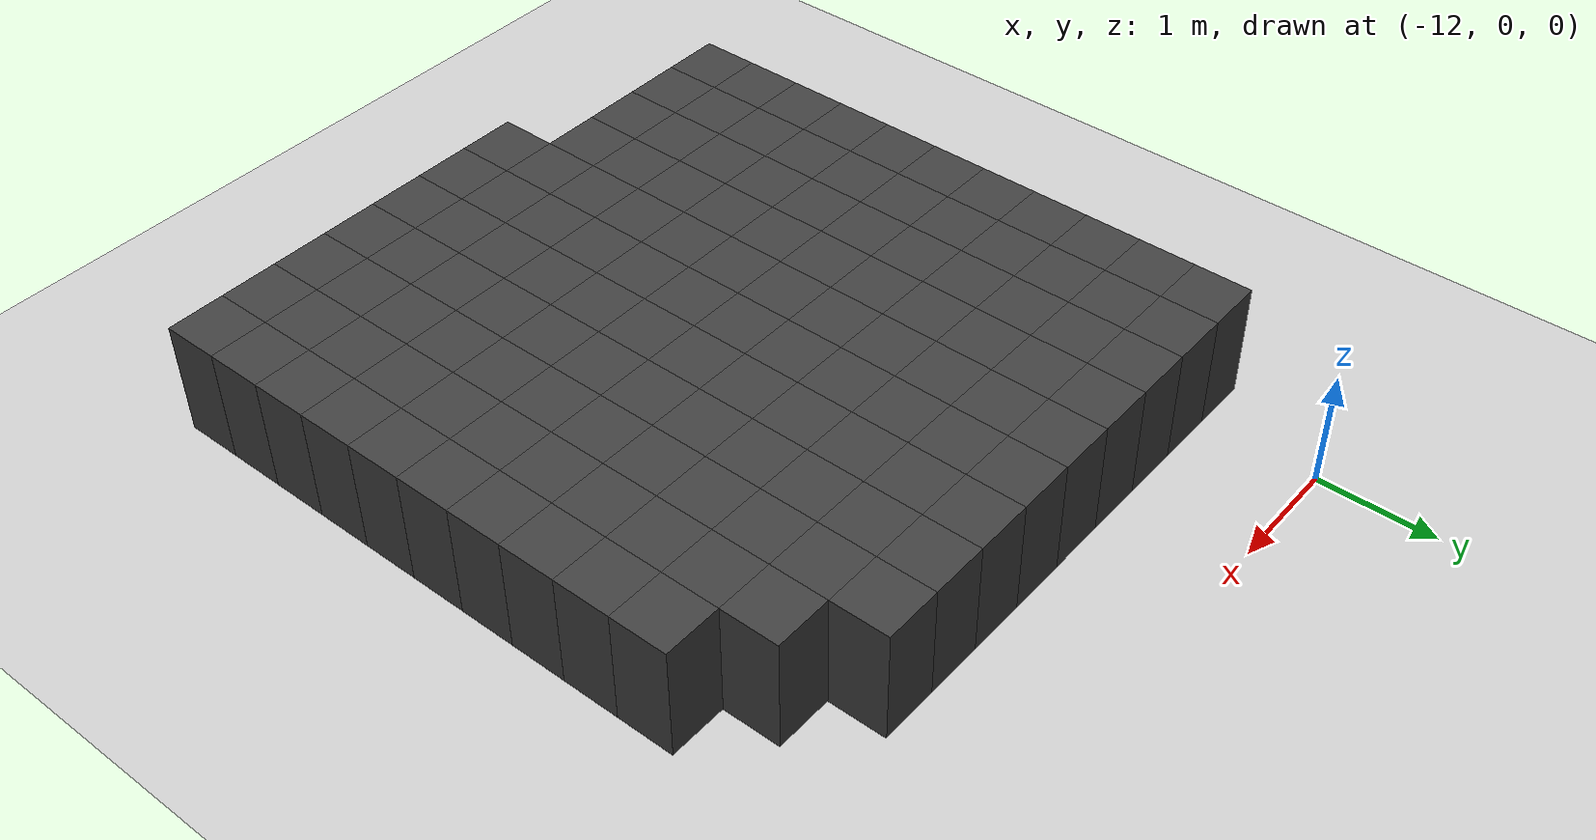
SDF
<sdf version="1.7">
 <world name="map_10764">
  <model name="ground_plane">
   <static>true</static>
   <link name="link">
    <collision name="collision">
     <geometry><plane><normal>0 0 1</normal><size>200 200</size></plane></geometry>
    </collision>
    <visual name="visual">
     <geometry><plane><normal>0 0 1</normal><size>200 200</size></plane></geometry>
     <material><ambient>0.8 0.8 0.8 1</ambient><diffuse>0.8 0.8 0.8 1</diffuse></material>
    </visual>
   </link>
  </model>
  <model name="maze_environment">
   <static>true</static>
   <link name="wall_1096">
    <pose>-12.250 -1.250 0.500 0 0 0</pose>
    <collision name="col"><geometry><box><size>0.5 0.5 1.0</size></box></geometry></collision>
    <visual name="vis">
     <geometry><box><size>0.5 0.5 1.0</size></box></geometry>
     <material><ambient>0.15 0.15 0.15 1</ambient><diffuse>0.25 0.25 0.25 1</diffuse></material>
    </visual>
   </link>
   <link name="wall_1097">
    <pose>-11.750 -1.250 0.500 0 0 0</pose>
    <collision name="col"><geometry><box><size>0.5 0.5 1.0</size></box></geometry></collision>
    <visual name="vis">
     <geometry><box><size>0.5 0.5 1.0</size></box></geometry>
     <material><ambient>0.15 0.15 0.15 1</ambient><diffuse>0.25 0.25 0.25 1</diffuse></material>
    </visual>
   </link>
   <link name="wall_1098">
    <pose>-11.250 -1.250 0.500 0 0 0</pose>
    <collision name="col"><geometry><box><size>0.5 0.5 1.0</size></box></geometry></collision>
    <visual name="vis">
     <geometry><box><size>0.5 0.5 1.0</size></box></geometry>
     <material><ambient>0.15 0.15 0.15 1</ambient><diffuse>0.25 0.25 0.25 1</diffuse></material>
    </visual>
   </link>
   <link name="wall_1099">
    <pose>-10.750 -1.250 0.500 0 0 0</pose>
    <collision name="col"><geometry><box><size>0.5 0.5 1.0</size></box></geometry></collision>
    <visual name="vis">
     <geometry><box><size>0.5 0.5 1.0</size></box></geometry>
     <material><ambient>0.15 0.15 0.15 1</ambient><diffuse>0.25 0.25 0.25 1</diffuse></material>
    </visual>
   </link>
   <link name="wall_1100">
    <pose>-10.250 -1.250 0.500 0 0 0</pose>
    <collision name="col"><geometry><box><size>0.5 0.5 1.0</size></box></geometry></collision>
    <visual name="vis">
     <geometry><box><size>0.5 0.5 1.0</size></box></geometry>
     <material><ambient>0.15 0.15 0.15 1</ambient><diffuse>0.25 0.25 0.25 1</diffuse></material>
    </visual>
   </link>
   <link name="wall_1101">
    <pose>-9.750 -1.250 0.500 0 0 0</pose>
    <collision name="col"><geometry><box><size>0.5 0.5 1.0</size></box></geometry></collision>
    <visual name="vis">
     <geometry><box><size>0.5 0.5 1.0</size></box></geometry>
     <material><ambient>0.15 0.15 0.15 1</ambient><diffuse>0.25 0.25 0.25 1</diffuse></material>
    </visual>
   </link>
   <link name="wall_1102">
    <pose>-9.250 -1.250 0.500 0 0 0</pose>
    <collision name="col"><geometry><box><size>0.5 0.5 1.0</size></box></geometry></collision>
    <visual name="vis">
     <geometry><box><size>0.5 0.5 1.0</size></box></geometry>
     <material><ambient>0.15 0.15 0.15 1</ambient><diffuse>0.25 0.25 0.25 1</diffuse></material>
    </visual>
   </link>
   <link name="wall_1103">
    <pose>-8.750 -1.250 0.500 0 0 0</pose>
    <collision name="col"><geometry><box><size>0.5 0.5 1.0</size></box></geometry></collision>
    <visual name="vis">
     <geometry><box><size>0.5 0.5 1.0</size></box></geometry>
     <material><ambient>0.15 0.15 0.15 1</ambient><diffuse>0.25 0.25 0.25 1</diffuse></material>
    </visual>
   </link>
   <link name="wall_1104">
    <pose>-8.250 -1.250 0.500 0 0 0</pose>
    <collision name="col"><geometry><box><size>0.5 0.5 1.0</size></box></geometry></collision>
    <visual name="vis">
     <geometry><box><size>0.5 0.5 1.0</size></box></geometry>
     <material><ambient>0.15 0.15 0.15 1</ambient><diffuse>0.25 0.25 0.25 1</diffuse></material>
    </visual>
   </link>
   <link name="wall_1129">
    <pose>-12.250 -1.750 0.500 0 0 0</pose>
    <collision name="col"><geometry><box><size>0.5 0.5 1.0</size></box></geometry></collision>
    <visual name="vis">
     <geometry><box><size>0.5 0.5 1.0</size></box></geometry>
     <material><ambient>0.15 0.15 0.15 1</ambient><diffuse>0.25 0.25 0.25 1</diffuse></material>
    </visual>
   </link>
   <link name="wall_1130">
    <pose>-11.750 -1.750 0.500 0 0 0</pose>
    <collision name="col"><geometry><box><size>0.5 0.5 1.0</size></box></geometry></collision>
    <visual name="vis">
     <geometry><box><size>0.5 0.5 1.0</size></box></geometry>
     <material><ambient>0.15 0.15 0.15 1</ambient><diffuse>0.25 0.25 0.25 1</diffuse></material>
    </visual>
   </link>
   <link name="wall_1131">
    <pose>-11.250 -1.750 0.500 0 0 0</pose>
    <collision name="col"><geometry><box><size>0.5 0.5 1.0</size></box></geometry></collision>
    <visual name="vis">
     <geometry><box><size>0.5 0.5 1.0</size></box></geometry>
     <material><ambient>0.15 0.15 0.15 1</ambient><diffuse>0.25 0.25 0.25 1</diffuse></material>
    </visual>
   </link>
   <link name="wall_1132">
    <pose>-10.750 -1.750 0.500 0 0 0</pose>
    <collision name="col"><geometry><box><size>0.5 0.5 1.0</size></box></geometry></collision>
    <visual name="vis">
     <geometry><box><size>0.5 0.5 1.0</size></box></geometry>
     <material><ambient>0.15 0.15 0.15 1</ambient><diffuse>0.25 0.25 0.25 1</diffuse></material>
    </visual>
   </link>
   <link name="wall_1133">
    <pose>-10.250 -1.750 0.500 0 0 0</pose>
    <collision name="col"><geometry><box><size>0.5 0.5 1.0</size></box></geometry></collision>
    <visual name="vis">
     <geometry><box><size>0.5 0.5 1.0</size></box></geometry>
     <material><ambient>0.15 0.15 0.15 1</ambient><diffuse>0.25 0.25 0.25 1</diffuse></material>
    </visual>
   </link>
   <link name="wall_1134">
    <pose>-9.750 -1.750 0.500 0 0 0</pose>
    <collision name="col"><geometry><box><size>0.5 0.5 1.0</size></box></geometry></collision>
    <visual name="vis">
     <geometry><box><size>0.5 0.5 1.0</size></box></geometry>
     <material><ambient>0.15 0.15 0.15 1</ambient><diffuse>0.25 0.25 0.25 1</diffuse></material>
    </visual>
   </link>
   <link name="wall_1135">
    <pose>-9.250 -1.750 0.500 0 0 0</pose>
    <collision name="col"><geometry><box><size>0.5 0.5 1.0</size></box></geometry></collision>
    <visual name="vis">
     <geometry><box><size>0.5 0.5 1.0</size></box></geometry>
     <material><ambient>0.15 0.15 0.15 1</ambient><diffuse>0.25 0.25 0.25 1</diffuse></material>
    </visual>
   </link>
   <link name="wall_1136">
    <pose>-8.750 -1.750 0.500 0 0 0</pose>
    <collision name="col"><geometry><box><size>0.5 0.5 1.0</size></box></geometry></collision>
    <visual name="vis">
     <geometry><box><size>0.5 0.5 1.0</size></box></geometry>
     <material><ambient>0.15 0.15 0.15 1</ambient><diffuse>0.25 0.25 0.25 1</diffuse></material>
    </visual>
   </link>
   <link name="wall_1137">
    <pose>-8.250 -1.750 0.500 0 0 0</pose>
    <collision name="col"><geometry><box><size>0.5 0.5 1.0</size></box></geometry></collision>
    <visual name="vis">
     <geometry><box><size>0.5 0.5 1.0</size></box></geometry>
     <material><ambient>0.15 0.15 0.15 1</ambient><diffuse>0.25 0.25 0.25 1</diffuse></material>
    </visual>
   </link>
   <link name="wall_1138">
    <pose>-7.750 -1.750 0.500 0 0 0</pose>
    <collision name="col"><geometry><box><size>0.5 0.5 1.0</size></box></geometry></collision>
    <visual name="vis">
     <geometry><box><size>0.5 0.5 1.0</size></box></geometry>
     <material><ambient>0.15 0.15 0.15 1</ambient><diffuse>0.25 0.25 0.25 1</diffuse></material>
    </visual>
   </link>
   <link name="wall_1162">
    <pose>-12.250 -2.250 0.500 0 0 0</pose>
    <collision name="col"><geometry><box><size>0.5 0.5 1.0</size></box></geometry></collision>
    <visual name="vis">
     <geometry><box><size>0.5 0.5 1.0</size></box></geometry>
     <material><ambient>0.15 0.15 0.15 1</ambient><diffuse>0.25 0.25 0.25 1</diffuse></material>
    </visual>
   </link>
   <link name="wall_1163">
    <pose>-11.750 -2.250 0.500 0 0 0</pose>
    <collision name="col"><geometry><box><size>0.5 0.5 1.0</size></box></geometry></collision>
    <visual name="vis">
     <geometry><box><size>0.5 0.5 1.0</size></box></geometry>
     <material><ambient>0.15 0.15 0.15 1</ambient><diffuse>0.25 0.25 0.25 1</diffuse></material>
    </visual>
   </link>
   <link name="wall_1164">
    <pose>-11.250 -2.250 0.500 0 0 0</pose>
    <collision name="col"><geometry><box><size>0.5 0.5 1.0</size></box></geometry></collision>
    <visual name="vis">
     <geometry><box><size>0.5 0.5 1.0</size></box></geometry>
     <material><ambient>0.15 0.15 0.15 1</ambient><diffuse>0.25 0.25 0.25 1</diffuse></material>
    </visual>
   </link>
   <link name="wall_1165">
    <pose>-10.750 -2.250 0.500 0 0 0</pose>
    <collision name="col"><geometry><box><size>0.5 0.5 1.0</size></box></geometry></collision>
    <visual name="vis">
     <geometry><box><size>0.5 0.5 1.0</size></box></geometry>
     <material><ambient>0.15 0.15 0.15 1</ambient><diffuse>0.25 0.25 0.25 1</diffuse></material>
    </visual>
   </link>
   <link name="wall_1166">
    <pose>-10.250 -2.250 0.500 0 0 0</pose>
    <collision name="col"><geometry><box><size>0.5 0.5 1.0</size></box></geometry></collision>
    <visual name="vis">
     <geometry><box><size>0.5 0.5 1.0</size></box></geometry>
     <material><ambient>0.15 0.15 0.15 1</ambient><diffuse>0.25 0.25 0.25 1</diffuse></material>
    </visual>
   </link>
   <link name="wall_1167">
    <pose>-9.750 -2.250 0.500 0 0 0</pose>
    <collision name="col"><geometry><box><size>0.5 0.5 1.0</size></box></geometry></collision>
    <visual name="vis">
     <geometry><box><size>0.5 0.5 1.0</size></box></geometry>
     <material><ambient>0.15 0.15 0.15 1</ambient><diffuse>0.25 0.25 0.25 1</diffuse></material>
    </visual>
   </link>
   <link name="wall_1168">
    <pose>-9.250 -2.250 0.500 0 0 0</pose>
    <collision name="col"><geometry><box><size>0.5 0.5 1.0</size></box></geometry></collision>
    <visual name="vis">
     <geometry><box><size>0.5 0.5 1.0</size></box></geometry>
     <material><ambient>0.15 0.15 0.15 1</ambient><diffuse>0.25 0.25 0.25 1</diffuse></material>
    </visual>
   </link>
   <link name="wall_1169">
    <pose>-8.750 -2.250 0.500 0 0 0</pose>
    <collision name="col"><geometry><box><size>0.5 0.5 1.0</size></box></geometry></collision>
    <visual name="vis">
     <geometry><box><size>0.5 0.5 1.0</size></box></geometry>
     <material><ambient>0.15 0.15 0.15 1</ambient><diffuse>0.25 0.25 0.25 1</diffuse></material>
    </visual>
   </link>
   <link name="wall_1170">
    <pose>-8.250 -2.250 0.500 0 0 0</pose>
    <collision name="col"><geometry><box><size>0.5 0.5 1.0</size></box></geometry></collision>
    <visual name="vis">
     <geometry><box><size>0.5 0.5 1.0</size></box></geometry>
     <material><ambient>0.15 0.15 0.15 1</ambient><diffuse>0.25 0.25 0.25 1</diffuse></material>
    </visual>
   </link>
   <link name="wall_1171">
    <pose>-7.750 -2.250 0.500 0 0 0</pose>
    <collision name="col"><geometry><box><size>0.5 0.5 1.0</size></box></geometry></collision>
    <visual name="vis">
     <geometry><box><size>0.5 0.5 1.0</size></box></geometry>
     <material><ambient>0.15 0.15 0.15 1</ambient><diffuse>0.25 0.25 0.25 1</diffuse></material>
    </visual>
   </link>
   <link name="wall_1172">
    <pose>-7.250 -2.250 0.500 0 0 0</pose>
    <collision name="col"><geometry><box><size>0.5 0.5 1.0</size></box></geometry></collision>
    <visual name="vis">
     <geometry><box><size>0.5 0.5 1.0</size></box></geometry>
     <material><ambient>0.15 0.15 0.15 1</ambient><diffuse>0.25 0.25 0.25 1</diffuse></material>
    </visual>
   </link>
   <link name="wall_1203">
    <pose>-12.250 -2.750 0.500 0 0 0</pose>
    <collision name="col"><geometry><box><size>0.5 0.5 1.0</size></box></geometry></collision>
    <visual name="vis">
     <geometry><box><size>0.5 0.5 1.0</size></box></geometry>
     <material><ambient>0.15 0.15 0.15 1</ambient><diffuse>0.25 0.25 0.25 1</diffuse></material>
    </visual>
   </link>
   <link name="wall_1204">
    <pose>-11.750 -2.750 0.500 0 0 0</pose>
    <collision name="col"><geometry><box><size>0.5 0.5 1.0</size></box></geometry></collision>
    <visual name="vis">
     <geometry><box><size>0.5 0.5 1.0</size></box></geometry>
     <material><ambient>0.15 0.15 0.15 1</ambient><diffuse>0.25 0.25 0.25 1</diffuse></material>
    </visual>
   </link>
   <link name="wall_1205">
    <pose>-11.250 -2.750 0.500 0 0 0</pose>
    <collision name="col"><geometry><box><size>0.5 0.5 1.0</size></box></geometry></collision>
    <visual name="vis">
     <geometry><box><size>0.5 0.5 1.0</size></box></geometry>
     <material><ambient>0.15 0.15 0.15 1</ambient><diffuse>0.25 0.25 0.25 1</diffuse></material>
    </visual>
   </link>
   <link name="wall_1206">
    <pose>-10.750 -2.750 0.500 0 0 0</pose>
    <collision name="col"><geometry><box><size>0.5 0.5 1.0</size></box></geometry></collision>
    <visual name="vis">
     <geometry><box><size>0.5 0.5 1.0</size></box></geometry>
     <material><ambient>0.15 0.15 0.15 1</ambient><diffuse>0.25 0.25 0.25 1</diffuse></material>
    </visual>
   </link>
   <link name="wall_1207">
    <pose>-10.250 -2.750 0.500 0 0 0</pose>
    <collision name="col"><geometry><box><size>0.5 0.5 1.0</size></box></geometry></collision>
    <visual name="vis">
     <geometry><box><size>0.5 0.5 1.0</size></box></geometry>
     <material><ambient>0.15 0.15 0.15 1</ambient><diffuse>0.25 0.25 0.25 1</diffuse></material>
    </visual>
   </link>
   <link name="wall_1208">
    <pose>-9.750 -2.750 0.500 0 0 0</pose>
    <collision name="col"><geometry><box><size>0.5 0.5 1.0</size></box></geometry></collision>
    <visual name="vis">
     <geometry><box><size>0.5 0.5 1.0</size></box></geometry>
     <material><ambient>0.15 0.15 0.15 1</ambient><diffuse>0.25 0.25 0.25 1</diffuse></material>
    </visual>
   </link>
   <link name="wall_1209">
    <pose>-9.250 -2.750 0.500 0 0 0</pose>
    <collision name="col"><geometry><box><size>0.5 0.5 1.0</size></box></geometry></collision>
    <visual name="vis">
     <geometry><box><size>0.5 0.5 1.0</size></box></geometry>
     <material><ambient>0.15 0.15 0.15 1</ambient><diffuse>0.25 0.25 0.25 1</diffuse></material>
    </visual>
   </link>
   <link name="wall_1210">
    <pose>-8.750 -2.750 0.500 0 0 0</pose>
    <collision name="col"><geometry><box><size>0.5 0.5 1.0</size></box></geometry></collision>
    <visual name="vis">
     <geometry><box><size>0.5 0.5 1.0</size></box></geometry>
     <material><ambient>0.15 0.15 0.15 1</ambient><diffuse>0.25 0.25 0.25 1</diffuse></material>
    </visual>
   </link>
   <link name="wall_1211">
    <pose>-8.250 -2.750 0.500 0 0 0</pose>
    <collision name="col"><geometry><box><size>0.5 0.5 1.0</size></box></geometry></collision>
    <visual name="vis">
     <geometry><box><size>0.5 0.5 1.0</size></box></geometry>
     <material><ambient>0.15 0.15 0.15 1</ambient><diffuse>0.25 0.25 0.25 1</diffuse></material>
    </visual>
   </link>
   <link name="wall_1212">
    <pose>-7.750 -2.750 0.500 0 0 0</pose>
    <collision name="col"><geometry><box><size>0.5 0.5 1.0</size></box></geometry></collision>
    <visual name="vis">
     <geometry><box><size>0.5 0.5 1.0</size></box></geometry>
     <material><ambient>0.15 0.15 0.15 1</ambient><diffuse>0.25 0.25 0.25 1</diffuse></material>
    </visual>
   </link>
   <link name="wall_1213">
    <pose>-7.250 -2.750 0.500 0 0 0</pose>
    <collision name="col"><geometry><box><size>0.5 0.5 1.0</size></box></geometry></collision>
    <visual name="vis">
     <geometry><box><size>0.5 0.5 1.0</size></box></geometry>
     <material><ambient>0.15 0.15 0.15 1</ambient><diffuse>0.25 0.25 0.25 1</diffuse></material>
    </visual>
   </link>
   <link name="wall_1245">
    <pose>-12.250 -3.250 0.500 0 0 0</pose>
    <collision name="col"><geometry><box><size>0.5 0.5 1.0</size></box></geometry></collision>
    <visual name="vis">
     <geometry><box><size>0.5 0.5 1.0</size></box></geometry>
     <material><ambient>0.15 0.15 0.15 1</ambient><diffuse>0.25 0.25 0.25 1</diffuse></material>
    </visual>
   </link>
   <link name="wall_1246">
    <pose>-11.750 -3.250 0.500 0 0 0</pose>
    <collision name="col"><geometry><box><size>0.5 0.5 1.0</size></box></geometry></collision>
    <visual name="vis">
     <geometry><box><size>0.5 0.5 1.0</size></box></geometry>
     <material><ambient>0.15 0.15 0.15 1</ambient><diffuse>0.25 0.25 0.25 1</diffuse></material>
    </visual>
   </link>
   <link name="wall_1247">
    <pose>-11.250 -3.250 0.500 0 0 0</pose>
    <collision name="col"><geometry><box><size>0.5 0.5 1.0</size></box></geometry></collision>
    <visual name="vis">
     <geometry><box><size>0.5 0.5 1.0</size></box></geometry>
     <material><ambient>0.15 0.15 0.15 1</ambient><diffuse>0.25 0.25 0.25 1</diffuse></material>
    </visual>
   </link>
   <link name="wall_1248">
    <pose>-10.750 -3.250 0.500 0 0 0</pose>
    <collision name="col"><geometry><box><size>0.5 0.5 1.0</size></box></geometry></collision>
    <visual name="vis">
     <geometry><box><size>0.5 0.5 1.0</size></box></geometry>
     <material><ambient>0.15 0.15 0.15 1</ambient><diffuse>0.25 0.25 0.25 1</diffuse></material>
    </visual>
   </link>
   <link name="wall_1249">
    <pose>-10.250 -3.250 0.500 0 0 0</pose>
    <collision name="col"><geometry><box><size>0.5 0.5 1.0</size></box></geometry></collision>
    <visual name="vis">
     <geometry><box><size>0.5 0.5 1.0</size></box></geometry>
     <material><ambient>0.15 0.15 0.15 1</ambient><diffuse>0.25 0.25 0.25 1</diffuse></material>
    </visual>
   </link>
   <link name="wall_1250">
    <pose>-9.750 -3.250 0.500 0 0 0</pose>
    <collision name="col"><geometry><box><size>0.5 0.5 1.0</size></box></geometry></collision>
    <visual name="vis">
     <geometry><box><size>0.5 0.5 1.0</size></box></geometry>
     <material><ambient>0.15 0.15 0.15 1</ambient><diffuse>0.25 0.25 0.25 1</diffuse></material>
    </visual>
   </link>
   <link name="wall_1251">
    <pose>-9.250 -3.250 0.500 0 0 0</pose>
    <collision name="col"><geometry><box><size>0.5 0.5 1.0</size></box></geometry></collision>
    <visual name="vis">
     <geometry><box><size>0.5 0.5 1.0</size></box></geometry>
     <material><ambient>0.15 0.15 0.15 1</ambient><diffuse>0.25 0.25 0.25 1</diffuse></material>
    </visual>
   </link>
   <link name="wall_1252">
    <pose>-8.750 -3.250 0.500 0 0 0</pose>
    <collision name="col"><geometry><box><size>0.5 0.5 1.0</size></box></geometry></collision>
    <visual name="vis">
     <geometry><box><size>0.5 0.5 1.0</size></box></geometry>
     <material><ambient>0.15 0.15 0.15 1</ambient><diffuse>0.25 0.25 0.25 1</diffuse></material>
    </visual>
   </link>
   <link name="wall_1253">
    <pose>-8.250 -3.250 0.500 0 0 0</pose>
    <collision name="col"><geometry><box><size>0.5 0.5 1.0</size></box></geometry></collision>
    <visual name="vis">
     <geometry><box><size>0.5 0.5 1.0</size></box></geometry>
     <material><ambient>0.15 0.15 0.15 1</ambient><diffuse>0.25 0.25 0.25 1</diffuse></material>
    </visual>
   </link>
   <link name="wall_1254">
    <pose>-7.750 -3.250 0.500 0 0 0</pose>
    <collision name="col"><geometry><box><size>0.5 0.5 1.0</size></box></geometry></collision>
    <visual name="vis">
     <geometry><box><size>0.5 0.5 1.0</size></box></geometry>
     <material><ambient>0.15 0.15 0.15 1</ambient><diffuse>0.25 0.25 0.25 1</diffuse></material>
    </visual>
   </link>
   <link name="wall_1255">
    <pose>-7.250 -3.250 0.500 0 0 0</pose>
    <collision name="col"><geometry><box><size>0.5 0.5 1.0</size></box></geometry></collision>
    <visual name="vis">
     <geometry><box><size>0.5 0.5 1.0</size></box></geometry>
     <material><ambient>0.15 0.15 0.15 1</ambient><diffuse>0.25 0.25 0.25 1</diffuse></material>
    </visual>
   </link>
   <link name="wall_1287">
    <pose>-12.250 -3.750 0.500 0 0 0</pose>
    <collision name="col"><geometry><box><size>0.5 0.5 1.0</size></box></geometry></collision>
    <visual name="vis">
     <geometry><box><size>0.5 0.5 1.0</size></box></geometry>
     <material><ambient>0.15 0.15 0.15 1</ambient><diffuse>0.25 0.25 0.25 1</diffuse></material>
    </visual>
   </link>
   <link name="wall_1288">
    <pose>-11.750 -3.750 0.500 0 0 0</pose>
    <collision name="col"><geometry><box><size>0.5 0.5 1.0</size></box></geometry></collision>
    <visual name="vis">
     <geometry><box><size>0.5 0.5 1.0</size></box></geometry>
     <material><ambient>0.15 0.15 0.15 1</ambient><diffuse>0.25 0.25 0.25 1</diffuse></material>
    </visual>
   </link>
   <link name="wall_1289">
    <pose>-11.250 -3.750 0.500 0 0 0</pose>
    <collision name="col"><geometry><box><size>0.5 0.5 1.0</size></box></geometry></collision>
    <visual name="vis">
     <geometry><box><size>0.5 0.5 1.0</size></box></geometry>
     <material><ambient>0.15 0.15 0.15 1</ambient><diffuse>0.25 0.25 0.25 1</diffuse></material>
    </visual>
   </link>
   <link name="wall_1290">
    <pose>-10.750 -3.750 0.500 0 0 0</pose>
    <collision name="col"><geometry><box><size>0.5 0.5 1.0</size></box></geometry></collision>
    <visual name="vis">
     <geometry><box><size>0.5 0.5 1.0</size></box></geometry>
     <material><ambient>0.15 0.15 0.15 1</ambient><diffuse>0.25 0.25 0.25 1</diffuse></material>
    </visual>
   </link>
   <link name="wall_1291">
    <pose>-10.250 -3.750 0.500 0 0 0</pose>
    <collision name="col"><geometry><box><size>0.5 0.5 1.0</size></box></geometry></collision>
    <visual name="vis">
     <geometry><box><size>0.5 0.5 1.0</size></box></geometry>
     <material><ambient>0.15 0.15 0.15 1</ambient><diffuse>0.25 0.25 0.25 1</diffuse></material>
    </visual>
   </link>
   <link name="wall_1292">
    <pose>-9.750 -3.750 0.500 0 0 0</pose>
    <collision name="col"><geometry><box><size>0.5 0.5 1.0</size></box></geometry></collision>
    <visual name="vis">
     <geometry><box><size>0.5 0.5 1.0</size></box></geometry>
     <material><ambient>0.15 0.15 0.15 1</ambient><diffuse>0.25 0.25 0.25 1</diffuse></material>
    </visual>
   </link>
   <link name="wall_1293">
    <pose>-9.250 -3.750 0.500 0 0 0</pose>
    <collision name="col"><geometry><box><size>0.5 0.5 1.0</size></box></geometry></collision>
    <visual name="vis">
     <geometry><box><size>0.5 0.5 1.0</size></box></geometry>
     <material><ambient>0.15 0.15 0.15 1</ambient><diffuse>0.25 0.25 0.25 1</diffuse></material>
    </visual>
   </link>
   <link name="wall_1294">
    <pose>-8.750 -3.750 0.500 0 0 0</pose>
    <collision name="col"><geometry><box><size>0.5 0.5 1.0</size></box></geometry></collision>
    <visual name="vis">
     <geometry><box><size>0.5 0.5 1.0</size></box></geometry>
     <material><ambient>0.15 0.15 0.15 1</ambient><diffuse>0.25 0.25 0.25 1</diffuse></material>
    </visual>
   </link>
   <link name="wall_1295">
    <pose>-8.250 -3.750 0.500 0 0 0</pose>
    <collision name="col"><geometry><box><size>0.5 0.5 1.0</size></box></geometry></collision>
    <visual name="vis">
     <geometry><box><size>0.5 0.5 1.0</size></box></geometry>
     <material><ambient>0.15 0.15 0.15 1</ambient><diffuse>0.25 0.25 0.25 1</diffuse></material>
    </visual>
   </link>
   <link name="wall_1296">
    <pose>-7.750 -3.750 0.500 0 0 0</pose>
    <collision name="col"><geometry><box><size>0.5 0.5 1.0</size></box></geometry></collision>
    <visual name="vis">
     <geometry><box><size>0.5 0.5 1.0</size></box></geometry>
     <material><ambient>0.15 0.15 0.15 1</ambient><diffuse>0.25 0.25 0.25 1</diffuse></material>
    </visual>
   </link>
   <link name="wall_1297">
    <pose>-7.250 -3.750 0.500 0 0 0</pose>
    <collision name="col"><geometry><box><size>0.5 0.5 1.0</size></box></geometry></collision>
    <visual name="vis">
     <geometry><box><size>0.5 0.5 1.0</size></box></geometry>
     <material><ambient>0.15 0.15 0.15 1</ambient><diffuse>0.25 0.25 0.25 1</diffuse></material>
    </visual>
   </link>
   <link name="wall_1335">
    <pose>-12.250 -4.250 0.500 0 0 0</pose>
    <collision name="col"><geometry><box><size>0.5 0.5 1.0</size></box></geometry></collision>
    <visual name="vis">
     <geometry><box><size>0.5 0.5 1.0</size></box></geometry>
     <material><ambient>0.15 0.15 0.15 1</ambient><diffuse>0.25 0.25 0.25 1</diffuse></material>
    </visual>
   </link>
   <link name="wall_1336">
    <pose>-11.750 -4.250 0.500 0 0 0</pose>
    <collision name="col"><geometry><box><size>0.5 0.5 1.0</size></box></geometry></collision>
    <visual name="vis">
     <geometry><box><size>0.5 0.5 1.0</size></box></geometry>
     <material><ambient>0.15 0.15 0.15 1</ambient><diffuse>0.25 0.25 0.25 1</diffuse></material>
    </visual>
   </link>
   <link name="wall_1337">
    <pose>-11.250 -4.250 0.500 0 0 0</pose>
    <collision name="col"><geometry><box><size>0.5 0.5 1.0</size></box></geometry></collision>
    <visual name="vis">
     <geometry><box><size>0.5 0.5 1.0</size></box></geometry>
     <material><ambient>0.15 0.15 0.15 1</ambient><diffuse>0.25 0.25 0.25 1</diffuse></material>
    </visual>
   </link>
   <link name="wall_1338">
    <pose>-10.750 -4.250 0.500 0 0 0</pose>
    <collision name="col"><geometry><box><size>0.5 0.5 1.0</size></box></geometry></collision>
    <visual name="vis">
     <geometry><box><size>0.5 0.5 1.0</size></box></geometry>
     <material><ambient>0.15 0.15 0.15 1</ambient><diffuse>0.25 0.25 0.25 1</diffuse></material>
    </visual>
   </link>
   <link name="wall_1339">
    <pose>-10.250 -4.250 0.500 0 0 0</pose>
    <collision name="col"><geometry><box><size>0.5 0.5 1.0</size></box></geometry></collision>
    <visual name="vis">
     <geometry><box><size>0.5 0.5 1.0</size></box></geometry>
     <material><ambient>0.15 0.15 0.15 1</ambient><diffuse>0.25 0.25 0.25 1</diffuse></material>
    </visual>
   </link>
   <link name="wall_1340">
    <pose>-9.750 -4.250 0.500 0 0 0</pose>
    <collision name="col"><geometry><box><size>0.5 0.5 1.0</size></box></geometry></collision>
    <visual name="vis">
     <geometry><box><size>0.5 0.5 1.0</size></box></geometry>
     <material><ambient>0.15 0.15 0.15 1</ambient><diffuse>0.25 0.25 0.25 1</diffuse></material>
    </visual>
   </link>
   <link name="wall_1341">
    <pose>-9.250 -4.250 0.500 0 0 0</pose>
    <collision name="col"><geometry><box><size>0.5 0.5 1.0</size></box></geometry></collision>
    <visual name="vis">
     <geometry><box><size>0.5 0.5 1.0</size></box></geometry>
     <material><ambient>0.15 0.15 0.15 1</ambient><diffuse>0.25 0.25 0.25 1</diffuse></material>
    </visual>
   </link>
   <link name="wall_1342">
    <pose>-8.750 -4.250 0.500 0 0 0</pose>
    <collision name="col"><geometry><box><size>0.5 0.5 1.0</size></box></geometry></collision>
    <visual name="vis">
     <geometry><box><size>0.5 0.5 1.0</size></box></geometry>
     <material><ambient>0.15 0.15 0.15 1</ambient><diffuse>0.25 0.25 0.25 1</diffuse></material>
    </visual>
   </link>
   <link name="wall_1343">
    <pose>-8.250 -4.250 0.500 0 0 0</pose>
    <collision name="col"><geometry><box><size>0.5 0.5 1.0</size></box></geometry></collision>
    <visual name="vis">
     <geometry><box><size>0.5 0.5 1.0</size></box></geometry>
     <material><ambient>0.15 0.15 0.15 1</ambient><diffuse>0.25 0.25 0.25 1</diffuse></material>
    </visual>
   </link>
   <link name="wall_1344">
    <pose>-7.750 -4.250 0.500 0 0 0</pose>
    <collision name="col"><geometry><box><size>0.5 0.5 1.0</size></box></geometry></collision>
    <visual name="vis">
     <geometry><box><size>0.5 0.5 1.0</size></box></geometry>
     <material><ambient>0.15 0.15 0.15 1</ambient><diffuse>0.25 0.25 0.25 1</diffuse></material>
    </visual>
   </link>
   <link name="wall_1345">
    <pose>-7.250 -4.250 0.500 0 0 0</pose>
    <collision name="col"><geometry><box><size>0.5 0.5 1.0</size></box></geometry></collision>
    <visual name="vis">
     <geometry><box><size>0.5 0.5 1.0</size></box></geometry>
     <material><ambient>0.15 0.15 0.15 1</ambient><diffuse>0.25 0.25 0.25 1</diffuse></material>
    </visual>
   </link>
   <link name="wall_1379">
    <pose>-12.250 -4.750 0.500 0 0 0</pose>
    <collision name="col"><geometry><box><size>0.5 0.5 1.0</size></box></geometry></collision>
    <visual name="vis">
     <geometry><box><size>0.5 0.5 1.0</size></box></geometry>
     <material><ambient>0.15 0.15 0.15 1</ambient><diffuse>0.25 0.25 0.25 1</diffuse></material>
    </visual>
   </link>
   <link name="wall_1380">
    <pose>-11.750 -4.750 0.500 0 0 0</pose>
    <collision name="col"><geometry><box><size>0.5 0.5 1.0</size></box></geometry></collision>
    <visual name="vis">
     <geometry><box><size>0.5 0.5 1.0</size></box></geometry>
     <material><ambient>0.15 0.15 0.15 1</ambient><diffuse>0.25 0.25 0.25 1</diffuse></material>
    </visual>
   </link>
   <link name="wall_1381">
    <pose>-11.250 -4.750 0.500 0 0 0</pose>
    <collision name="col"><geometry><box><size>0.5 0.5 1.0</size></box></geometry></collision>
    <visual name="vis">
     <geometry><box><size>0.5 0.5 1.0</size></box></geometry>
     <material><ambient>0.15 0.15 0.15 1</ambient><diffuse>0.25 0.25 0.25 1</diffuse></material>
    </visual>
   </link>
   <link name="wall_1382">
    <pose>-10.750 -4.750 0.500 0 0 0</pose>
    <collision name="col"><geometry><box><size>0.5 0.5 1.0</size></box></geometry></collision>
    <visual name="vis">
     <geometry><box><size>0.5 0.5 1.0</size></box></geometry>
     <material><ambient>0.15 0.15 0.15 1</ambient><diffuse>0.25 0.25 0.25 1</diffuse></material>
    </visual>
   </link>
   <link name="wall_1383">
    <pose>-10.250 -4.750 0.500 0 0 0</pose>
    <collision name="col"><geometry><box><size>0.5 0.5 1.0</size></box></geometry></collision>
    <visual name="vis">
     <geometry><box><size>0.5 0.5 1.0</size></box></geometry>
     <material><ambient>0.15 0.15 0.15 1</ambient><diffuse>0.25 0.25 0.25 1</diffuse></material>
    </visual>
   </link>
   <link name="wall_1384">
    <pose>-9.750 -4.750 0.500 0 0 0</pose>
    <collision name="col"><geometry><box><size>0.5 0.5 1.0</size></box></geometry></collision>
    <visual name="vis">
     <geometry><box><size>0.5 0.5 1.0</size></box></geometry>
     <material><ambient>0.15 0.15 0.15 1</ambient><diffuse>0.25 0.25 0.25 1</diffuse></material>
    </visual>
   </link>
   <link name="wall_1385">
    <pose>-9.250 -4.750 0.500 0 0 0</pose>
    <collision name="col"><geometry><box><size>0.5 0.5 1.0</size></box></geometry></collision>
    <visual name="vis">
     <geometry><box><size>0.5 0.5 1.0</size></box></geometry>
     <material><ambient>0.15 0.15 0.15 1</ambient><diffuse>0.25 0.25 0.25 1</diffuse></material>
    </visual>
   </link>
   <link name="wall_1386">
    <pose>-8.750 -4.750 0.500 0 0 0</pose>
    <collision name="col"><geometry><box><size>0.5 0.5 1.0</size></box></geometry></collision>
    <visual name="vis">
     <geometry><box><size>0.5 0.5 1.0</size></box></geometry>
     <material><ambient>0.15 0.15 0.15 1</ambient><diffuse>0.25 0.25 0.25 1</diffuse></material>
    </visual>
   </link>
   <link name="wall_1387">
    <pose>-8.250 -4.750 0.500 0 0 0</pose>
    <collision name="col"><geometry><box><size>0.5 0.5 1.0</size></box></geometry></collision>
    <visual name="vis">
     <geometry><box><size>0.5 0.5 1.0</size></box></geometry>
     <material><ambient>0.15 0.15 0.15 1</ambient><diffuse>0.25 0.25 0.25 1</diffuse></material>
    </visual>
   </link>
   <link name="wall_1388">
    <pose>-7.750 -4.750 0.500 0 0 0</pose>
    <collision name="col"><geometry><box><size>0.5 0.5 1.0</size></box></geometry></collision>
    <visual name="vis">
     <geometry><box><size>0.5 0.5 1.0</size></box></geometry>
     <material><ambient>0.15 0.15 0.15 1</ambient><diffuse>0.25 0.25 0.25 1</diffuse></material>
    </visual>
   </link>
   <link name="wall_1389">
    <pose>-7.250 -4.750 0.500 0 0 0</pose>
    <collision name="col"><geometry><box><size>0.5 0.5 1.0</size></box></geometry></collision>
    <visual name="vis">
     <geometry><box><size>0.5 0.5 1.0</size></box></geometry>
     <material><ambient>0.15 0.15 0.15 1</ambient><diffuse>0.25 0.25 0.25 1</diffuse></material>
    </visual>
   </link>
   <link name="wall_1423">
    <pose>-12.250 -5.250 0.500 0 0 0</pose>
    <collision name="col"><geometry><box><size>0.5 0.5 1.0</size></box></geometry></collision>
    <visual name="vis">
     <geometry><box><size>0.5 0.5 1.0</size></box></geometry>
     <material><ambient>0.15 0.15 0.15 1</ambient><diffuse>0.25 0.25 0.25 1</diffuse></material>
    </visual>
   </link>
   <link name="wall_1424">
    <pose>-11.750 -5.250 0.500 0 0 0</pose>
    <collision name="col"><geometry><box><size>0.5 0.5 1.0</size></box></geometry></collision>
    <visual name="vis">
     <geometry><box><size>0.5 0.5 1.0</size></box></geometry>
     <material><ambient>0.15 0.15 0.15 1</ambient><diffuse>0.25 0.25 0.25 1</diffuse></material>
    </visual>
   </link>
   <link name="wall_1425">
    <pose>-11.250 -5.250 0.500 0 0 0</pose>
    <collision name="col"><geometry><box><size>0.5 0.5 1.0</size></box></geometry></collision>
    <visual name="vis">
     <geometry><box><size>0.5 0.5 1.0</size></box></geometry>
     <material><ambient>0.15 0.15 0.15 1</ambient><diffuse>0.25 0.25 0.25 1</diffuse></material>
    </visual>
   </link>
   <link name="wall_1426">
    <pose>-10.750 -5.250 0.500 0 0 0</pose>
    <collision name="col"><geometry><box><size>0.5 0.5 1.0</size></box></geometry></collision>
    <visual name="vis">
     <geometry><box><size>0.5 0.5 1.0</size></box></geometry>
     <material><ambient>0.15 0.15 0.15 1</ambient><diffuse>0.25 0.25 0.25 1</diffuse></material>
    </visual>
   </link>
   <link name="wall_1427">
    <pose>-10.250 -5.250 0.500 0 0 0</pose>
    <collision name="col"><geometry><box><size>0.5 0.5 1.0</size></box></geometry></collision>
    <visual name="vis">
     <geometry><box><size>0.5 0.5 1.0</size></box></geometry>
     <material><ambient>0.15 0.15 0.15 1</ambient><diffuse>0.25 0.25 0.25 1</diffuse></material>
    </visual>
   </link>
   <link name="wall_1428">
    <pose>-9.750 -5.250 0.500 0 0 0</pose>
    <collision name="col"><geometry><box><size>0.5 0.5 1.0</size></box></geometry></collision>
    <visual name="vis">
     <geometry><box><size>0.5 0.5 1.0</size></box></geometry>
     <material><ambient>0.15 0.15 0.15 1</ambient><diffuse>0.25 0.25 0.25 1</diffuse></material>
    </visual>
   </link>
   <link name="wall_1429">
    <pose>-9.250 -5.250 0.500 0 0 0</pose>
    <collision name="col"><geometry><box><size>0.5 0.5 1.0</size></box></geometry></collision>
    <visual name="vis">
     <geometry><box><size>0.5 0.5 1.0</size></box></geometry>
     <material><ambient>0.15 0.15 0.15 1</ambient><diffuse>0.25 0.25 0.25 1</diffuse></material>
    </visual>
   </link>
   <link name="wall_1430">
    <pose>-8.750 -5.250 0.500 0 0 0</pose>
    <collision name="col"><geometry><box><size>0.5 0.5 1.0</size></box></geometry></collision>
    <visual name="vis">
     <geometry><box><size>0.5 0.5 1.0</size></box></geometry>
     <material><ambient>0.15 0.15 0.15 1</ambient><diffuse>0.25 0.25 0.25 1</diffuse></material>
    </visual>
   </link>
   <link name="wall_1431">
    <pose>-8.250 -5.250 0.500 0 0 0</pose>
    <collision name="col"><geometry><box><size>0.5 0.5 1.0</size></box></geometry></collision>
    <visual name="vis">
     <geometry><box><size>0.5 0.5 1.0</size></box></geometry>
     <material><ambient>0.15 0.15 0.15 1</ambient><diffuse>0.25 0.25 0.25 1</diffuse></material>
    </visual>
   </link>
   <link name="wall_1432">
    <pose>-7.750 -5.250 0.500 0 0 0</pose>
    <collision name="col"><geometry><box><size>0.5 0.5 1.0</size></box></geometry></collision>
    <visual name="vis">
     <geometry><box><size>0.5 0.5 1.0</size></box></geometry>
     <material><ambient>0.15 0.15 0.15 1</ambient><diffuse>0.25 0.25 0.25 1</diffuse></material>
    </visual>
   </link>
   <link name="wall_1433">
    <pose>-7.250 -5.250 0.500 0 0 0</pose>
    <collision name="col"><geometry><box><size>0.5 0.5 1.0</size></box></geometry></collision>
    <visual name="vis">
     <geometry><box><size>0.5 0.5 1.0</size></box></geometry>
     <material><ambient>0.15 0.15 0.15 1</ambient><diffuse>0.25 0.25 0.25 1</diffuse></material>
    </visual>
   </link>
   <link name="wall_1467">
    <pose>-12.250 -5.750 0.500 0 0 0</pose>
    <collision name="col"><geometry><box><size>0.5 0.5 1.0</size></box></geometry></collision>
    <visual name="vis">
     <geometry><box><size>0.5 0.5 1.0</size></box></geometry>
     <material><ambient>0.15 0.15 0.15 1</ambient><diffuse>0.25 0.25 0.25 1</diffuse></material>
    </visual>
   </link>
   <link name="wall_1468">
    <pose>-11.750 -5.750 0.500 0 0 0</pose>
    <collision name="col"><geometry><box><size>0.5 0.5 1.0</size></box></geometry></collision>
    <visual name="vis">
     <geometry><box><size>0.5 0.5 1.0</size></box></geometry>
     <material><ambient>0.15 0.15 0.15 1</ambient><diffuse>0.25 0.25 0.25 1</diffuse></material>
    </visual>
   </link>
   <link name="wall_1469">
    <pose>-11.250 -5.750 0.500 0 0 0</pose>
    <collision name="col"><geometry><box><size>0.5 0.5 1.0</size></box></geometry></collision>
    <visual name="vis">
     <geometry><box><size>0.5 0.5 1.0</size></box></geometry>
     <material><ambient>0.15 0.15 0.15 1</ambient><diffuse>0.25 0.25 0.25 1</diffuse></material>
    </visual>
   </link>
   <link name="wall_1470">
    <pose>-10.750 -5.750 0.500 0 0 0</pose>
    <collision name="col"><geometry><box><size>0.5 0.5 1.0</size></box></geometry></collision>
    <visual name="vis">
     <geometry><box><size>0.5 0.5 1.0</size></box></geometry>
     <material><ambient>0.15 0.15 0.15 1</ambient><diffuse>0.25 0.25 0.25 1</diffuse></material>
    </visual>
   </link>
   <link name="wall_1471">
    <pose>-10.250 -5.750 0.500 0 0 0</pose>
    <collision name="col"><geometry><box><size>0.5 0.5 1.0</size></box></geometry></collision>
    <visual name="vis">
     <geometry><box><size>0.5 0.5 1.0</size></box></geometry>
     <material><ambient>0.15 0.15 0.15 1</ambient><diffuse>0.25 0.25 0.25 1</diffuse></material>
    </visual>
   </link>
   <link name="wall_1472">
    <pose>-9.750 -5.750 0.500 0 0 0</pose>
    <collision name="col"><geometry><box><size>0.5 0.5 1.0</size></box></geometry></collision>
    <visual name="vis">
     <geometry><box><size>0.5 0.5 1.0</size></box></geometry>
     <material><ambient>0.15 0.15 0.15 1</ambient><diffuse>0.25 0.25 0.25 1</diffuse></material>
    </visual>
   </link>
   <link name="wall_1473">
    <pose>-9.250 -5.750 0.500 0 0 0</pose>
    <collision name="col"><geometry><box><size>0.5 0.5 1.0</size></box></geometry></collision>
    <visual name="vis">
     <geometry><box><size>0.5 0.5 1.0</size></box></geometry>
     <material><ambient>0.15 0.15 0.15 1</ambient><diffuse>0.25 0.25 0.25 1</diffuse></material>
    </visual>
   </link>
   <link name="wall_1474">
    <pose>-8.750 -5.750 0.500 0 0 0</pose>
    <collision name="col"><geometry><box><size>0.5 0.5 1.0</size></box></geometry></collision>
    <visual name="vis">
     <geometry><box><size>0.5 0.5 1.0</size></box></geometry>
     <material><ambient>0.15 0.15 0.15 1</ambient><diffuse>0.25 0.25 0.25 1</diffuse></material>
    </visual>
   </link>
   <link name="wall_1475">
    <pose>-8.250 -5.750 0.500 0 0 0</pose>
    <collision name="col"><geometry><box><size>0.5 0.5 1.0</size></box></geometry></collision>
    <visual name="vis">
     <geometry><box><size>0.5 0.5 1.0</size></box></geometry>
     <material><ambient>0.15 0.15 0.15 1</ambient><diffuse>0.25 0.25 0.25 1</diffuse></material>
    </visual>
   </link>
   <link name="wall_1476">
    <pose>-7.750 -5.750 0.500 0 0 0</pose>
    <collision name="col"><geometry><box><size>0.5 0.5 1.0</size></box></geometry></collision>
    <visual name="vis">
     <geometry><box><size>0.5 0.5 1.0</size></box></geometry>
     <material><ambient>0.15 0.15 0.15 1</ambient><diffuse>0.25 0.25 0.25 1</diffuse></material>
    </visual>
   </link>
   <link name="wall_1477">
    <pose>-7.250 -5.750 0.500 0 0 0</pose>
    <collision name="col"><geometry><box><size>0.5 0.5 1.0</size></box></geometry></collision>
    <visual name="vis">
     <geometry><box><size>0.5 0.5 1.0</size></box></geometry>
     <material><ambient>0.15 0.15 0.15 1</ambient><diffuse>0.25 0.25 0.25 1</diffuse></material>
    </visual>
   </link>
   <link name="wall_1511">
    <pose>-12.250 -6.250 0.500 0 0 0</pose>
    <collision name="col"><geometry><box><size>0.5 0.5 1.0</size></box></geometry></collision>
    <visual name="vis">
     <geometry><box><size>0.5 0.5 1.0</size></box></geometry>
     <material><ambient>0.15 0.15 0.15 1</ambient><diffuse>0.25 0.25 0.25 1</diffuse></material>
    </visual>
   </link>
   <link name="wall_1512">
    <pose>-11.750 -6.250 0.500 0 0 0</pose>
    <collision name="col"><geometry><box><size>0.5 0.5 1.0</size></box></geometry></collision>
    <visual name="vis">
     <geometry><box><size>0.5 0.5 1.0</size></box></geometry>
     <material><ambient>0.15 0.15 0.15 1</ambient><diffuse>0.25 0.25 0.25 1</diffuse></material>
    </visual>
   </link>
   <link name="wall_1513">
    <pose>-11.250 -6.250 0.500 0 0 0</pose>
    <collision name="col"><geometry><box><size>0.5 0.5 1.0</size></box></geometry></collision>
    <visual name="vis">
     <geometry><box><size>0.5 0.5 1.0</size></box></geometry>
     <material><ambient>0.15 0.15 0.15 1</ambient><diffuse>0.25 0.25 0.25 1</diffuse></material>
    </visual>
   </link>
   <link name="wall_1514">
    <pose>-10.750 -6.250 0.500 0 0 0</pose>
    <collision name="col"><geometry><box><size>0.5 0.5 1.0</size></box></geometry></collision>
    <visual name="vis">
     <geometry><box><size>0.5 0.5 1.0</size></box></geometry>
     <material><ambient>0.15 0.15 0.15 1</ambient><diffuse>0.25 0.25 0.25 1</diffuse></material>
    </visual>
   </link>
   <link name="wall_1515">
    <pose>-10.250 -6.250 0.500 0 0 0</pose>
    <collision name="col"><geometry><box><size>0.5 0.5 1.0</size></box></geometry></collision>
    <visual name="vis">
     <geometry><box><size>0.5 0.5 1.0</size></box></geometry>
     <material><ambient>0.15 0.15 0.15 1</ambient><diffuse>0.25 0.25 0.25 1</diffuse></material>
    </visual>
   </link>
   <link name="wall_1516">
    <pose>-9.750 -6.250 0.500 0 0 0</pose>
    <collision name="col"><geometry><box><size>0.5 0.5 1.0</size></box></geometry></collision>
    <visual name="vis">
     <geometry><box><size>0.5 0.5 1.0</size></box></geometry>
     <material><ambient>0.15 0.15 0.15 1</ambient><diffuse>0.25 0.25 0.25 1</diffuse></material>
    </visual>
   </link>
   <link name="wall_1517">
    <pose>-9.250 -6.250 0.500 0 0 0</pose>
    <collision name="col"><geometry><box><size>0.5 0.5 1.0</size></box></geometry></collision>
    <visual name="vis">
     <geometry><box><size>0.5 0.5 1.0</size></box></geometry>
     <material><ambient>0.15 0.15 0.15 1</ambient><diffuse>0.25 0.25 0.25 1</diffuse></material>
    </visual>
   </link>
   <link name="wall_1518">
    <pose>-8.750 -6.250 0.500 0 0 0</pose>
    <collision name="col"><geometry><box><size>0.5 0.5 1.0</size></box></geometry></collision>
    <visual name="vis">
     <geometry><box><size>0.5 0.5 1.0</size></box></geometry>
     <material><ambient>0.15 0.15 0.15 1</ambient><diffuse>0.25 0.25 0.25 1</diffuse></material>
    </visual>
   </link>
   <link name="wall_1519">
    <pose>-8.250 -6.250 0.500 0 0 0</pose>
    <collision name="col"><geometry><box><size>0.5 0.5 1.0</size></box></geometry></collision>
    <visual name="vis">
     <geometry><box><size>0.5 0.5 1.0</size></box></geometry>
     <material><ambient>0.15 0.15 0.15 1</ambient><diffuse>0.25 0.25 0.25 1</diffuse></material>
    </visual>
   </link>
   <link name="wall_1520">
    <pose>-7.750 -6.250 0.500 0 0 0</pose>
    <collision name="col"><geometry><box><size>0.5 0.5 1.0</size></box></geometry></collision>
    <visual name="vis">
     <geometry><box><size>0.5 0.5 1.0</size></box></geometry>
     <material><ambient>0.15 0.15 0.15 1</ambient><diffuse>0.25 0.25 0.25 1</diffuse></material>
    </visual>
   </link>
   <link name="wall_1521">
    <pose>-7.250 -6.250 0.500 0 0 0</pose>
    <collision name="col"><geometry><box><size>0.5 0.5 1.0</size></box></geometry></collision>
    <visual name="vis">
     <geometry><box><size>0.5 0.5 1.0</size></box></geometry>
     <material><ambient>0.15 0.15 0.15 1</ambient><diffuse>0.25 0.25 0.25 1</diffuse></material>
    </visual>
   </link>
   <link name="wall_1559">
    <pose>-10.250 -6.750 0.500 0 0 0</pose>
    <collision name="col"><geometry><box><size>0.5 0.5 1.0</size></box></geometry></collision>
    <visual name="vis">
     <geometry><box><size>0.5 0.5 1.0</size></box></geometry>
     <material><ambient>0.15 0.15 0.15 1</ambient><diffuse>0.25 0.25 0.25 1</diffuse></material>
    </visual>
   </link>
   <link name="wall_1560">
    <pose>-9.750 -6.750 0.500 0 0 0</pose>
    <collision name="col"><geometry><box><size>0.5 0.5 1.0</size></box></geometry></collision>
    <visual name="vis">
     <geometry><box><size>0.5 0.5 1.0</size></box></geometry>
     <material><ambient>0.15 0.15 0.15 1</ambient><diffuse>0.25 0.25 0.25 1</diffuse></material>
    </visual>
   </link>
   <link name="wall_1561">
    <pose>-9.250 -6.750 0.500 0 0 0</pose>
    <collision name="col"><geometry><box><size>0.5 0.5 1.0</size></box></geometry></collision>
    <visual name="vis">
     <geometry><box><size>0.5 0.5 1.0</size></box></geometry>
     <material><ambient>0.15 0.15 0.15 1</ambient><diffuse>0.25 0.25 0.25 1</diffuse></material>
    </visual>
   </link>
   <link name="wall_1562">
    <pose>-8.750 -6.750 0.500 0 0 0</pose>
    <collision name="col"><geometry><box><size>0.5 0.5 1.0</size></box></geometry></collision>
    <visual name="vis">
     <geometry><box><size>0.5 0.5 1.0</size></box></geometry>
     <material><ambient>0.15 0.15 0.15 1</ambient><diffuse>0.25 0.25 0.25 1</diffuse></material>
    </visual>
   </link>
   <link name="wall_1563">
    <pose>-8.250 -6.750 0.500 0 0 0</pose>
    <collision name="col"><geometry><box><size>0.5 0.5 1.0</size></box></geometry></collision>
    <visual name="vis">
     <geometry><box><size>0.5 0.5 1.0</size></box></geometry>
     <material><ambient>0.15 0.15 0.15 1</ambient><diffuse>0.25 0.25 0.25 1</diffuse></material>
    </visual>
   </link>
   <link name="wall_1564">
    <pose>-7.750 -6.750 0.500 0 0 0</pose>
    <collision name="col"><geometry><box><size>0.5 0.5 1.0</size></box></geometry></collision>
    <visual name="vis">
     <geometry><box><size>0.5 0.5 1.0</size></box></geometry>
     <material><ambient>0.15 0.15 0.15 1</ambient><diffuse>0.25 0.25 0.25 1</diffuse></material>
    </visual>
   </link>
   <link name="wall_1565">
    <pose>-7.250 -6.750 0.500 0 0 0</pose>
    <collision name="col"><geometry><box><size>0.5 0.5 1.0</size></box></geometry></collision>
    <visual name="vis">
     <geometry><box><size>0.5 0.5 1.0</size></box></geometry>
     <material><ambient>0.15 0.15 0.15 1</ambient><diffuse>0.25 0.25 0.25 1</diffuse></material>
    </visual>
   </link>
  </model>
 </world>
</sdf>
